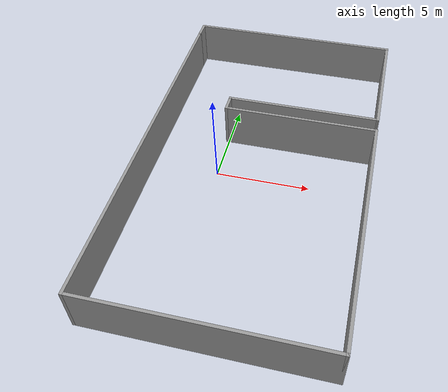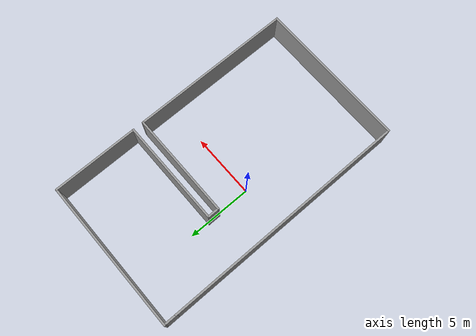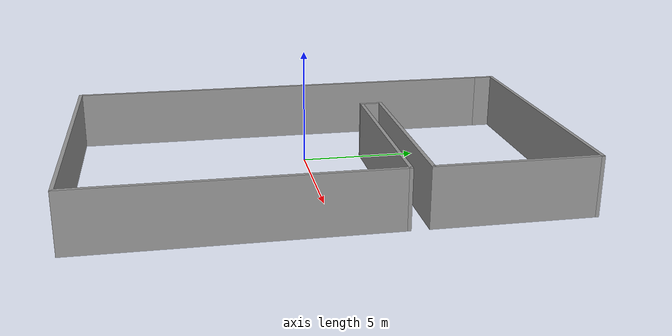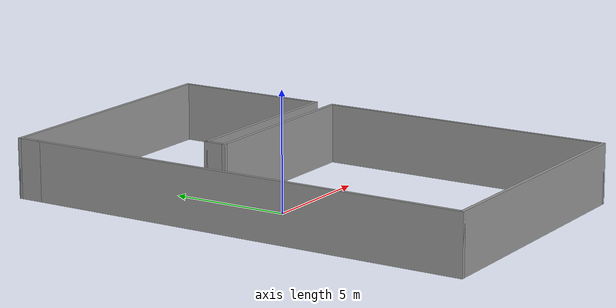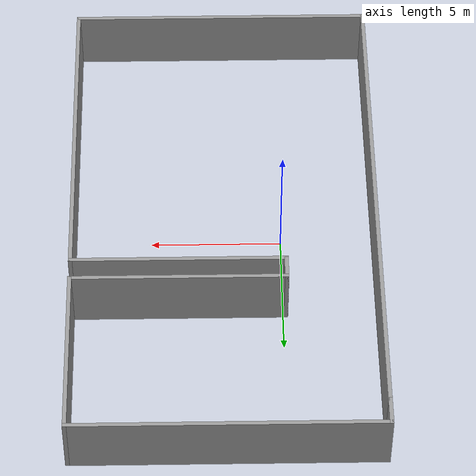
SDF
<?xml version='1.0'?>
<sdf version='1.6'>
  <model name='Untitled'>
    <pose frame=''>2.19 0.075 0 0 -0 0</pose>
    <link name='Wall_0'>
      <collision name='Wall_0_Collision'>
        <geometry>
          <box>
            <size>19.25 0.15 2.5</size>
          </box>
        </geometry>
        <pose frame=''>0 0 1.25 0 -0 0</pose>
      </collision>
      <visual name='Wall_0_Visual'>
        <pose frame=''>0 0 1.25 0 -0 0</pose>
        <geometry>
          <box>
            <size>19.25 0.15 2.5</size>
          </box>
        </geometry>
        <material>
          <script>
            <uri>file://media/materials/scripts/gazebo.material</uri>
            <name>Gazebo/Grey</name>
          </script>
          <ambient>1 1 1 1</ambient>
        </material>
        <meta>
          <layer>0</layer>
        </meta>
      </visual>
      <pose frame=''>-5.8 -0.475 0 0 -0 -1.5708</pose>
    </link>
    <link name='Wall_1'>
      <collision name='Wall_1_Collision'>
        <geometry>
          <box>
            <size>11.75 0.15 2.5</size>
          </box>
        </geometry>
        <pose frame=''>0 0 1.25 0 -0 0</pose>
      </collision>
      <visual name='Wall_1_Visual'>
        <pose frame=''>0 0 1.25 0 -0 0</pose>
        <geometry>
          <box>
            <size>11.75 0.15 2.5</size>
          </box>
        </geometry>
        <material>
          <script>
            <uri>file://media/materials/scripts/gazebo.material</uri>
            <name>Gazebo/Grey</name>
          </script>
          <ambient>1 1 1 1</ambient>
        </material>
        <meta>
          <layer>0</layer>
        </meta>
      </visual>
      <pose frame=''>0 -10.025 0 0 -0 0</pose>
    </link>
    <link name='Wall_2'>
      <collision name='Wall_2_Collision'>
        <geometry>
          <box>
            <size>12.75 0.15 2.5</size>
          </box>
        </geometry>
        <pose frame=''>0 0 1.25 0 -0 0</pose>
      </collision>
      <visual name='Wall_2_Visual'>
        <pose frame=''>0 0 1.25 0 -0 0</pose>
        <geometry>
          <box>
            <size>12.75 0.15 2.5</size>
          </box>
        </geometry>
        <material>
          <script>
            <uri>file://media/materials/scripts/gazebo.material</uri>
            <name>Gazebo/Grey</name>
          </script>
          <ambient>1 1 1 1</ambient>
        </material>
        <meta>
          <layer>0</layer>
        </meta>
      </visual>
      <pose frame=''>5.8 -3.725 0 0 -0 1.5708</pose>
    </link>
    <link name='Wall_3'>
      <collision name='Wall_3_Collision'>
        <geometry>
          <box>
            <size>8.25 0.15 2.5</size>
          </box>
        </geometry>
        <pose frame=''>0 0 1.25 0 -0 0</pose>
      </collision>
      <visual name='Wall_3_Visual'>
        <pose frame=''>0 0 1.25 0 -0 0</pose>
        <geometry>
          <box>
            <size>8.25 0.15 2.5</size>
          </box>
        </geometry>
        <material>
          <script>
            <uri>file://media/materials/scripts/gazebo.material</uri>
            <name>Gazebo/Grey</name>
          </script>
          <ambient>1 1 1 1</ambient>
        </material>
        <meta>
          <layer>0</layer>
        </meta>
      </visual>
      <pose frame=''>1.75 2.575 0 0 -0 3.14159</pose>
    </link>
    <link name='Wall_4'>
      <collision name='Wall_4_Collision'>
        <geometry>
          <box>
            <size>1 0.15 2.5</size>
          </box>
        </geometry>
        <pose frame=''>0 0 1.25 0 -0 0</pose>
      </collision>
      <visual name='Wall_4_Visual'>
        <pose frame=''>0 0 1.25 0 -0 0</pose>
        <geometry>
          <box>
            <size>1 0.15 2.5</size>
          </box>
        </geometry>
        <material>
          <script>
            <uri>file://media/materials/scripts/gazebo.material</uri>
            <name>Gazebo/Grey</name>
          </script>
          <ambient>1 1 1 1</ambient>
        </material>
        <meta>
          <layer>0</layer>
        </meta>
      </visual>
      <pose frame=''>-2.3 3 0 0 -0 1.5708</pose>
    </link>
    <link name='Wall_5'>
      <collision name='Wall_5_Collision'>
        <geometry>
          <box>
            <size>8.25 0.15 2.5</size>
          </box>
        </geometry>
        <pose frame=''>0 0 1.25 0 -0 0</pose>
      </collision>
      <visual name='Wall_5_Visual'>
        <pose frame=''>0 0 1.25 0 -0 0</pose>
        <geometry>
          <box>
            <size>8.25 0.15 2.5</size>
          </box>
        </geometry>
        <material>
          <script>
            <uri>file://media/materials/scripts/gazebo.material</uri>
            <name>Gazebo/Grey</name>
          </script>
          <ambient>1 1 1 1</ambient>
        </material>
        <meta>
          <layer>0</layer>
        </meta>
      </visual>
      <pose frame=''>1.75 3.425 0 0 -0 0</pose>
    </link>
    <link name='Wall_6'>
      <collision name='Wall_6_Collision'>
        <geometry>
          <box>
            <size>6.75 0.15 2.5</size>
          </box>
        </geometry>
        <pose frame=''>0 0 1.25 0 -0 0</pose>
      </collision>
      <visual name='Wall_6_Visual'>
        <pose frame=''>0 0 1.25 0 -0 0</pose>
        <geometry>
          <box>
            <size>6.75 0.15 2.5</size>
          </box>
        </geometry>
        <material>
          <script>
            <uri>file://media/materials/scripts/gazebo.material</uri>
            <name>Gazebo/Grey</name>
          </script>
          <ambient>1 1 1 1</ambient>
        </material>
        <meta>
          <layer>0</layer>
        </meta>
      </visual>
      <pose frame=''>5.8 6.725 0 0 -0 1.5708</pose>
    </link>
    <link name='Wall_7'>
      <collision name='Wall_7_Collision'>
        <geometry>
          <box>
            <size>11.75 0.15 2.5</size>
          </box>
        </geometry>
        <pose frame=''>0 0 1.25 0 -0 0</pose>
      </collision>
      <visual name='Wall_7_Visual'>
        <pose frame=''>0 0 1.25 0 -0 0</pose>
        <geometry>
          <box>
            <size>11.75 0.15 2.5</size>
          </box>
        </geometry>
        <material>
          <script>
            <uri>file://media/materials/scripts/gazebo.material</uri>
            <name>Gazebo/Grey</name>
          </script>
          <ambient>1 1 1 1</ambient>
        </material>
        <meta>
          <layer>0</layer>
        </meta>
      </visual>
      <pose frame=''>0 10.025 0 0 -0 3.14159</pose>
    </link>
    <link name='Wall_8'>
      <collision name='Wall_8_Collision'>
        <geometry>
          <box>
            <size>1.1 0.15 2.5</size>
          </box>
        </geometry>
        <pose frame=''>0 0 1.25 0 -0 0</pose>
      </collision>
      <visual name='Wall_8_Visual'>
        <pose frame=''>0 0 1.25 0 -0 0</pose>
        <geometry>
          <box>
            <size>1.1 0.15 2.5</size>
          </box>
        </geometry>
        <material>
          <script>
            <uri>file://media/materials/scripts/gazebo.material</uri>
            <name>Gazebo/Grey</name>
          </script>
          <ambient>1 1 1 1</ambient>
        </material>
        <meta>
          <layer>0</layer>
        </meta>
      </visual>
      <pose frame=''>-5.8 9.55 0 0 -0 -1.5708</pose>
    </link>
    <static>1</static>
  </model>
</sdf>
